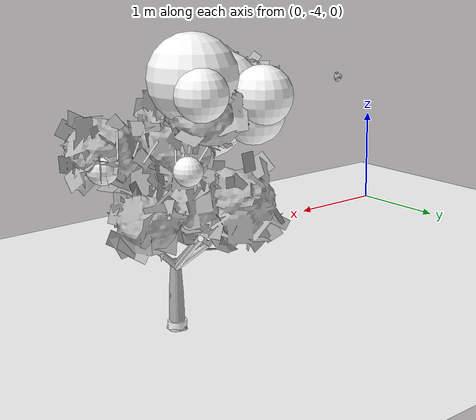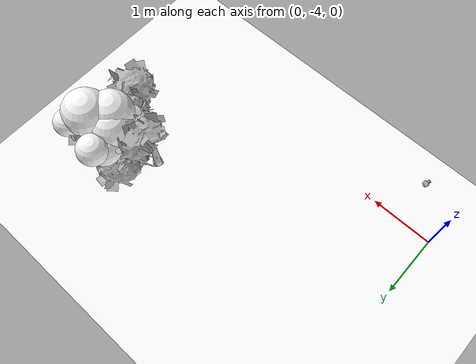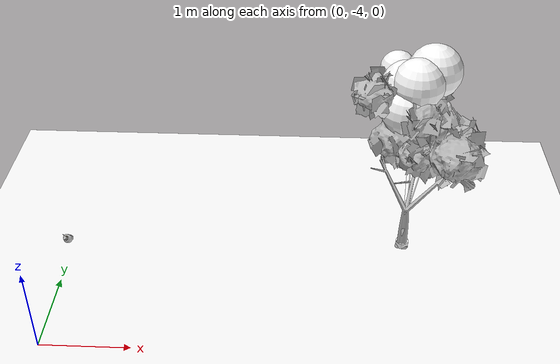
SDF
<sdf version="1.11">
 <world name="peach_orchard">
  <model name="ground">
   <static>true</static>
   <link name="link">
    <visual name="soil">
     <geometry><plane><normal>0 0 1</normal><size>32 22</size></plane></geometry>
     <material>
      <ambient>1 1 1 1</ambient>
      <diffuse>1 1 1 1</diffuse>
      <specular>0.1 0.1 0.1 1</specular>
      <pbr>
       <metal>
        <albedo_map>textures/soil_albedo.png</albedo_map>
        <normal_map type="tangent">textures/soil_normal.png</normal_map>
        <roughness>0.95</roughness>
        <metalness>0</metalness>
       </metal>
      </pbr>
     </material>
    </visual>
    <collision name="c_soil">
     <geometry><plane><normal>0 0 1</normal><size>32 22</size></plane></geometry>
    </collision>
   </link>
  </model>
  <model name="tree_r3_t2">
   <pose>4 -2.2 0 0 0 0</pose>
   <static>true</static>
   <link name="link">
    <visual name="tree_mesh">
     <pose>0 0 0 0 0 -0.284342</pose>
     <geometry>
      <mesh><uri>model://peach_sim/meshes/peach_tree_a.glb</uri><scale>0.98343 0.98343 0.98343</scale></mesh>
     </geometry>
    </visual>
    <visual name="trunk_0">
     <pose>0 0 0.149055 0 0 0</pose>
     <geometry><cylinder><radius>0.0524701</radius><length>0.298111</length></cylinder></geometry>
     <material>
      <ambient>1 1 1 1</ambient>
      <diffuse>1 1 1 1</diffuse>
      <specular>0.1 0.1 0.1 1</specular>
      <pbr>
       <metal>
        <albedo_map>textures/bark_albedo.png</albedo_map>
        <normal_map type="tangent">textures/bark_normal.png</normal_map>
        <roughness>0.9</roughness>
        <metalness>0</metalness>
       </metal>
      </pbr>
     </material>
    </visual>
    <collision name="c_trunk_0">
     <pose>0 0 0.149055 0 0 0</pose>
     <geometry><cylinder><radius>0.0524701</radius><length>0.298111</length></cylinder></geometry>
    </collision>
    <visual name="trunk_1">
     <pose>0 0 0.420065 0 0 0</pose>
     <geometry><cylinder><radius>0.0377785</radius><length>0.243909</length></cylinder></geometry>
     <material>
      <ambient>1 1 1 1</ambient>
      <diffuse>1 1 1 1</diffuse>
      <specular>0.1 0.1 0.1 1</specular>
      <pbr>
       <metal>
        <albedo_map>textures/bark_albedo.png</albedo_map>
        <normal_map type="tangent">textures/bark_normal.png</normal_map>
        <roughness>0.9</roughness>
        <metalness>0</metalness>
       </metal>
      </pbr>
     </material>
    </visual>
    <collision name="c_trunk_1">
     <pose>0 0 0.420065 0 0 0</pose>
     <geometry><cylinder><radius>0.0377785</radius><length>0.243909</length></cylinder></geometry>
    </collision>
    <visual name="root_flare">
     <pose>0 0 0.035 0 0 0</pose>
     <geometry><cylinder><radius>0.0760816</radius><length>0.07</length></cylinder></geometry>
     <material>
      <ambient>1 1 1 1</ambient>
      <diffuse>1 1 1 1</diffuse>
      <specular>0.1 0.1 0.1 1</specular>
      <pbr>
       <metal>
        <albedo_map>textures/bark_albedo.png</albedo_map>
        <normal_map type="tangent">textures/bark_normal.png</normal_map>
        <roughness>0.95</roughness>
        <metalness>0</metalness>
       </metal>
      </pbr>
     </material>
    </visual>
    <visual name="scaffold_0">
     <pose>0.0411965 0.375163 0.747923 0 0.987111 1.46142</pose>
     <geometry><cylinder><radius>0.022</radius><length>0.904605</length></cylinder></geometry>
     <material>
      <ambient>1 1 1 1</ambient>
      <diffuse>1 1 1 1</diffuse>
      <specular>0.1 0.1 0.1 1</specular>
      <pbr>
       <metal>
        <albedo_map>textures/bark_albedo.png</albedo_map>
        <normal_map type="tangent">textures/bark_normal.png</normal_map>
        <roughness>0.9</roughness>
        <metalness>0</metalness>
       </metal>
      </pbr>
     </material>
    </visual>
    <collision name="c_scaffold_0">
     <pose>0.0411965 0.375163 0.747923 0 0.987111 1.46142</pose>
     <geometry><cylinder><radius>0.022</radius><length>0.904605</length></cylinder></geometry>
    </collision>
    <visual name="branchlet_0_0">
     <pose>0.118654 0.590028 0.889309 0 1.08826 0.940139</pose>
     <geometry><cylinder><radius>0.012</radius><length>0.242743</length></cylinder></geometry>
     <material>
      <ambient>1 1 1 1</ambient>
      <diffuse>1 1 1 1</diffuse>
      <specular>0.1 0.1 0.1 1</specular>
      <pbr>
       <metal>
        <albedo_map>textures/bark_albedo.png</albedo_map>
        <normal_map type="tangent">textures/bark_normal.png</normal_map>
        <roughness>0.9</roughness>
        <metalness>0</metalness>
       </metal>
      </pbr>
     </material>
    </visual>
    <visual name="branchlet_0_1">
     <pose>-0.000234433 0.569813 0.970819 0 0.814393 -2.6648</pose>
     <geometry><cylinder><radius>0.012</radius><length>0.206075</length></cylinder></geometry>
     <material>
      <ambient>1 1 1 1</ambient>
      <diffuse>1 1 1 1</diffuse>
      <specular>0.1 0.1 0.1 1</specular>
      <pbr>
       <metal>
        <albedo_map>textures/bark_albedo.png</albedo_map>
        <normal_map type="tangent">textures/bark_normal.png</normal_map>
        <roughness>0.9</roughness>
        <metalness>0</metalness>
       </metal>
      </pbr>
     </material>
    </visual>
    <visual name="scaffold_1">
     <pose>0.146731 0.368526 0.74023 0 1.02378 1.19188</pose>
     <geometry><cylinder><radius>0.022</radius><length>0.928867</length></cylinder></geometry>
     <material>
      <ambient>1 1 1 1</ambient>
      <diffuse>1 1 1 1</diffuse>
      <specular>0.1 0.1 0.1 1</specular>
      <pbr>
       <metal>
        <albedo_map>textures/bark_albedo.png</albedo_map>
        <normal_map type="tangent">textures/bark_normal.png</normal_map>
        <roughness>0.9</roughness>
        <metalness>0</metalness>
       </metal>
      </pbr>
     </material>
    </visual>
    <collision name="c_scaffold_1">
     <pose>0.146731 0.368526 0.74023 0 1.02378 1.19188</pose>
     <geometry><cylinder><radius>0.022</radius><length>0.928867</length></cylinder></geometry>
    </collision>
    <visual name="branchlet_1_0">
     <pose>0.121043 0.609035 0.979841 0 1.21114 -2.84571</pose>
     <geometry><cylinder><radius>0.012</radius><length>0.308766</length></cylinder></geometry>
     <material>
      <ambient>1 1 1 1</ambient>
      <diffuse>1 1 1 1</diffuse>
      <specular>0.1 0.1 0.1 1</specular>
      <pbr>
       <metal>
        <albedo_map>textures/bark_albedo.png</albedo_map>
        <normal_map type="tangent">textures/bark_normal.png</normal_map>
        <roughness>0.9</roughness>
        <metalness>0</metalness>
       </metal>
      </pbr>
     </material>
    </visual>
    <visual name="branchlet_1_1">
     <pose>0.349899 0.606536 1.02709 0 0.693996 -0.027296</pose>
     <geometry><cylinder><radius>0.012</radius><length>0.335441</length></cylinder></geometry>
     <material>
      <ambient>1 1 1 1</ambient>
      <diffuse>1 1 1 1</diffuse>
      <specular>0.1 0.1 0.1 1</specular>
      <pbr>
       <metal>
        <albedo_map>textures/bark_albedo.png</albedo_map>
        <normal_map type="tangent">textures/bark_normal.png</normal_map>
        <roughness>0.9</roughness>
        <metalness>0</metalness>
       </metal>
      </pbr>
     </material>
    </visual>
    <visual name="canopy_0">
     <pose>-0.148236 0.884861 1.95027 0 0 0</pose>
     <geometry><sphere><radius>0.212084</radius></sphere></geometry>
     <material>
      <ambient>1 1 1 1</ambient>
      <diffuse>1 1 1 1</diffuse>
      <specular>0.1 0.1 0.1 1</specular>
      <pbr>
       <metal>
        <albedo_map>textures/leaf_albedo.png</albedo_map>
        <normal_map type="tangent">textures/leaf_normal.png</normal_map>
        <roughness>0.85</roughness>
        <metalness>0</metalness>
       </metal>
      </pbr>
     </material>
    </visual>
    <collision name="c_canopy_0">
     <pose>-0.148236 0.884861 1.95027 0 0 0</pose>
     <geometry><sphere><radius>0.212084</radius></sphere></geometry>
    </collision>
    <visual name="canopy_1">
     <pose>-0.0770486 0.505133 1.93713 0 0 0</pose>
     <geometry><sphere><radius>0.29601</radius></sphere></geometry>
     <material>
      <ambient>1 1 1 1</ambient>
      <diffuse>1 1 1 1</diffuse>
      <specular>0.1 0.1 0.1 1</specular>
      <pbr>
       <metal>
        <albedo_map>textures/leaf_albedo.png</albedo_map>
        <normal_map type="tangent">textures/leaf_normal.png</normal_map>
        <roughness>0.85</roughness>
        <metalness>0</metalness>
       </metal>
      </pbr>
     </material>
    </visual>
    <collision name="c_canopy_1">
     <pose>-0.0770486 0.505133 1.93713 0 0 0</pose>
     <geometry><sphere><radius>0.29601</radius></sphere></geometry>
    </collision>
    <visual name="canopy_2">
     <pose>-0.16886 0.755609 1.81423 0 0 0</pose>
     <geometry><sphere><radius>0.229153</radius></sphere></geometry>
     <material>
      <ambient>1 1 1 1</ambient>
      <diffuse>1 1 1 1</diffuse>
      <specular>0.1 0.1 0.1 1</specular>
      <pbr>
       <metal>
        <albedo_map>textures/leaf_albedo.png</albedo_map>
        <normal_map type="tangent">textures/leaf_normal.png</normal_map>
        <roughness>0.85</roughness>
        <metalness>0</metalness>
       </metal>
      </pbr>
     </material>
    </visual>
    <collision name="c_canopy_2">
     <pose>-0.16886 0.755609 1.81423 0 0 0</pose>
     <geometry><sphere><radius>0.229153</radius></sphere></geometry>
    </collision>
    <visual name="canopy_3">
     <pose>0.0366819 0.387905 2.02014 0 0 0</pose>
     <geometry><sphere><radius>0.302865</radius></sphere></geometry>
     <material>
      <ambient>1 1 1 1</ambient>
      <diffuse>1 1 1 1</diffuse>
      <specular>0.1 0.1 0.1 1</specular>
      <pbr>
       <metal>
        <albedo_map>textures/leaf_albedo.png</albedo_map>
        <normal_map type="tangent">textures/leaf_normal.png</normal_map>
        <roughness>0.85</roughness>
        <metalness>0</metalness>
       </metal>
      </pbr>
     </material>
    </visual>
    <visual name="canopy_4">
     <pose>-0.0127409 0.589853 1.78665 0 0 0</pose>
     <geometry><sphere><radius>0.211436</radius></sphere></geometry>
     <material>
      <ambient>1 1 1 1</ambient>
      <diffuse>1 1 1 1</diffuse>
      <specular>0.1 0.1 0.1 1</specular>
      <pbr>
       <metal>
        <albedo_map>textures/leaf_albedo.png</albedo_map>
        <normal_map type="tangent">textures/leaf_normal.png</normal_map>
        <roughness>0.85</roughness>
        <metalness>0</metalness>
       </metal>
      </pbr>
     </material>
    </visual>
    <visual name="canopy_5">
     <pose>0.343844 0.845476 2.0007 0 0 0</pose>
     <geometry><sphere><radius>0.185288</radius></sphere></geometry>
     <material>
      <ambient>1 1 1 1</ambient>
      <diffuse>1 1 1 1</diffuse>
      <specular>0.1 0.1 0.1 1</specular>
      <pbr>
       <metal>
        <albedo_map>textures/leaf_albedo.png</albedo_map>
        <normal_map type="tangent">textures/leaf_normal.png</normal_map>
        <roughness>0.85</roughness>
        <metalness>0</metalness>
       </metal>
      </pbr>
     </material>
    </visual>
    <visual name="canopy_6">
     <pose>0.237812 0.608523 2.07257 0 0 0</pose>
     <geometry><sphere><radius>0.317187</radius></sphere></geometry>
     <material>
      <ambient>1 1 1 1</ambient>
      <diffuse>1 1 1 1</diffuse>
      <specular>0.1 0.1 0.1 1</specular>
      <pbr>
       <metal>
        <albedo_map>textures/leaf_albedo.png</albedo_map>
        <normal_map type="tangent">textures/leaf_normal.png</normal_map>
        <roughness>0.85</roughness>
        <metalness>0</metalness>
       </metal>
      </pbr>
     </material>
    </visual>
    <visual name="canopy_7">
     <pose>-0.0673886 0.31925 1.73299 0 0 0</pose>
     <geometry><sphere><radius>0.304938</radius></sphere></geometry>
     <material>
      <ambient>1 1 1 1</ambient>
      <diffuse>1 1 1 1</diffuse>
      <specular>0.1 0.1 0.1 1</specular>
      <pbr>
       <metal>
        <albedo_map>textures/leaf_albedo.png</albedo_map>
        <normal_map type="tangent">textures/leaf_normal.png</normal_map>
        <roughness>0.85</roughness>
        <metalness>0</metalness>
       </metal>
      </pbr>
     </material>
    </visual>
    <visual name="canopy_8">
     <pose>0.172235 0.466377 1.85532 0 0 0</pose>
     <geometry><sphere><radius>0.192846</radius></sphere></geometry>
     <material>
      <ambient>1 1 1 1</ambient>
      <diffuse>1 1 1 1</diffuse>
      <specular>0.1 0.1 0.1 1</specular>
      <pbr>
       <metal>
        <albedo_map>textures/leaf_albedo.png</albedo_map>
        <normal_map type="tangent">textures/leaf_normal.png</normal_map>
        <roughness>0.85</roughness>
        <metalness>0</metalness>
       </metal>
      </pbr>
     </material>
    </visual>
    <visual name="foliage_0">
     <pose>0.549716 -0.101148 1.36482 0 0 0</pose>
     <geometry><sphere><radius>0.12236</radius></sphere></geometry>
     <material>
      <ambient>1 1 1 1</ambient>
      <diffuse>1 1 1 1</diffuse>
      <specular>0.1 0.1 0.1 1</specular>
      <pbr>
       <metal>
        <albedo_map>textures/leaf_albedo.png</albedo_map>
        <normal_map type="tangent">textures/leaf_normal.png</normal_map>
        <roughness>0.85</roughness>
        <metalness>0</metalness>
       </metal>
      </pbr>
     </material>
    </visual>
    <visual name="foliage_4">
     <pose>0.318334 -0.302657 1.39149 0 0 0</pose>
     <geometry><sphere><radius>0.106235</radius></sphere></geometry>
     <material>
      <ambient>1 1 1 1</ambient>
      <diffuse>1 1 1 1</diffuse>
      <specular>0.1 0.1 0.1 1</specular>
      <pbr>
       <metal>
        <albedo_map>textures/leaf_albedo.png</albedo_map>
        <normal_map type="tangent">textures/leaf_normal.png</normal_map>
        <roughness>0.85</roughness>
        <metalness>0</metalness>
       </metal>
      </pbr>
     </material>
    </visual>
    <visual name="foliage_8">
     <pose>0.416324 0.78155 1.48591 0 0 0</pose>
     <geometry><sphere><radius>0.10224</radius></sphere></geometry>
     <material>
      <ambient>1 1 1 1</ambient>
      <diffuse>1 1 1 1</diffuse>
      <specular>0.1 0.1 0.1 1</specular>
      <pbr>
       <metal>
        <albedo_map>textures/leaf_albedo.png</albedo_map>
        <normal_map type="tangent">textures/leaf_normal.png</normal_map>
        <roughness>0.85</roughness>
        <metalness>0</metalness>
       </metal>
      </pbr>
     </material>
    </visual>
    <visual name="twig_0">
     <pose>0.517685 -0.0490663 1.55562 0 0.27215 -2.78168</pose>
     <geometry><cylinder><radius>0.007</radius><length>0.15534</length></cylinder></geometry>
     <material>
      <ambient>1 1 1 1</ambient>
      <diffuse>1 1 1 1</diffuse>
      <specular>0.1 0.1 0.1 1</specular>
      <pbr>
       <metal>
        <albedo_map>textures/bark_albedo.png</albedo_map>
        <normal_map type="tangent">textures/bark_normal.png</normal_map>
        <roughness>0.9</roughness>
        <metalness>0</metalness>
       </metal>
      </pbr>
     </material>
    </visual>
    <visual name="twig_1">
     <pose>0.530464 0.0867635 1.56481 0 0.37545 -2.18852</pose>
     <geometry><cylinder><radius>0.007</radius><length>0.205093</length></cylinder></geometry>
     <material>
      <ambient>1 1 1 1</ambient>
      <diffuse>1 1 1 1</diffuse>
      <specular>0.1 0.1 0.1 1</specular>
      <pbr>
       <metal>
        <albedo_map>textures/bark_albedo.png</albedo_map>
        <normal_map type="tangent">textures/bark_normal.png</normal_map>
        <roughness>0.9</roughness>
        <metalness>0</metalness>
       </metal>
      </pbr>
     </material>
    </visual>
    <visual name="twig_2">
     <pose>0.529143 0.330754 1.57754 0 0.387682 2.83132</pose>
     <geometry><cylinder><radius>0.007</radius><length>0.115877</length></cylinder></geometry>
     <material>
      <ambient>1 1 1 1</ambient>
      <diffuse>1 1 1 1</diffuse>
      <specular>0.1 0.1 0.1 1</specular>
      <pbr>
       <metal>
        <albedo_map>textures/bark_albedo.png</albedo_map>
        <normal_map type="tangent">textures/bark_normal.png</normal_map>
        <roughness>0.9</roughness>
        <metalness>0</metalness>
       </metal>
      </pbr>
     </material>
    </visual>
    <visual name="twig_3">
     <pose>0.5215 0.499168 1.58498 0 0.630782 2.79787</pose>
     <geometry><cylinder><radius>0.007</radius><length>0.179735</length></cylinder></geometry>
     <material>
      <ambient>1 1 1 1</ambient>
      <diffuse>1 1 1 1</diffuse>
      <specular>0.1 0.1 0.1 1</specular>
      <pbr>
       <metal>
        <albedo_map>textures/bark_albedo.png</albedo_map>
        <normal_map type="tangent">textures/bark_normal.png</normal_map>
        <roughness>0.9</roughness>
        <metalness>0</metalness>
       </metal>
      </pbr>
     </material>
    </visual>
    <visual name="twig_4">
     <pose>0.344665 -0.27646 1.47562 0 0.712315 3.01959</pose>
     <geometry><cylinder><radius>0.007</radius><length>0.134931</length></cylinder></geometry>
     <material>
      <ambient>1 1 1 1</ambient>
      <diffuse>1 1 1 1</diffuse>
      <specular>0.1 0.1 0.1 1</specular>
      <pbr>
       <metal>
        <albedo_map>textures/bark_albedo.png</albedo_map>
        <normal_map type="tangent">textures/bark_normal.png</normal_map>
        <roughness>0.9</roughness>
        <metalness>0</metalness>
       </metal>
      </pbr>
     </material>
    </visual>
    <visual name="twig_5">
     <pose>0.385029 -0.341075 1.44761 0 0.403492 -2.8693</pose>
     <geometry><cylinder><radius>0.007</radius><length>0.119843</length></cylinder></geometry>
     <material>
      <ambient>1 1 1 1</ambient>
      <diffuse>1 1 1 1</diffuse>
      <specular>0.1 0.1 0.1 1</specular>
      <pbr>
       <metal>
        <albedo_map>textures/bark_albedo.png</albedo_map>
        <normal_map type="tangent">textures/bark_normal.png</normal_map>
        <roughness>0.9</roughness>
        <metalness>0</metalness>
       </metal>
      </pbr>
     </material>
    </visual>
    <visual name="twig_6">
     <pose>0.45234 -0.419615 1.47886 0 0.200255 -2.25475</pose>
     <geometry><cylinder><radius>0.007</radius><length>0.148462</length></cylinder></geometry>
     <material>
      <ambient>1 1 1 1</ambient>
      <diffuse>1 1 1 1</diffuse>
      <specular>0.1 0.1 0.1 1</specular>
      <pbr>
       <metal>
        <albedo_map>textures/bark_albedo.png</albedo_map>
        <normal_map type="tangent">textures/bark_normal.png</normal_map>
        <roughness>0.9</roughness>
        <metalness>0</metalness>
       </metal>
      </pbr>
     </material>
    </visual>
    <visual name="twig_7">
     <pose>0.36807 0.572729 1.55795 0 0.216265 -2.25095</pose>
     <geometry><cylinder><radius>0.007</radius><length>0.198693</length></cylinder></geometry>
     <material>
      <ambient>1 1 1 1</ambient>
      <diffuse>1 1 1 1</diffuse>
      <specular>0.1 0.1 0.1 1</specular>
      <pbr>
       <metal>
        <albedo_map>textures/bark_albedo.png</albedo_map>
        <normal_map type="tangent">textures/bark_normal.png</normal_map>
        <roughness>0.9</roughness>
        <metalness>0</metalness>
       </metal>
      </pbr>
     </material>
    </visual>
    <visual name="twig_8">
     <pose>0.347431 0.653865 1.60303 0 0.623324 -2.70122</pose>
     <geometry><cylinder><radius>0.007</radius><length>0.185104</length></cylinder></geometry>
     <material>
      <ambient>1 1 1 1</ambient>
      <diffuse>1 1 1 1</diffuse>
      <specular>0.1 0.1 0.1 1</specular>
      <pbr>
       <metal>
        <albedo_map>textures/bark_albedo.png</albedo_map>
        <normal_map type="tangent">textures/bark_normal.png</normal_map>
        <roughness>0.9</roughness>
        <metalness>0</metalness>
       </metal>
      </pbr>
     </material>
    </visual>
    <visual name="twig_9">
     <pose>0.325891 0.820023 1.58449 0 0.700806 3.10078</pose>
     <geometry><cylinder><radius>0.007</radius><length>0.15519</length></cylinder></geometry>
     <material>
      <ambient>1 1 1 1</ambient>
      <diffuse>1 1 1 1</diffuse>
      <specular>0.1 0.1 0.1 1</specular>
      <pbr>
       <metal>
        <albedo_map>textures/bark_albedo.png</albedo_map>
        <normal_map type="tangent">textures/bark_normal.png</normal_map>
        <roughness>0.9</roughness>
        <metalness>0</metalness>
       </metal>
      </pbr>
     </material>
    </visual>
   </link>
  </model>
  <model name="peach_tree_r2_t1_03">
   <pose>0.55 -3.93542 1.45 0 0.796412 -1.94435</pose>
   <static>true</static>
   <link name="bag">
    <visual name="bag_mesh">
     <pose>0 0 0.04819 0 0 -0</pose>
     <geometry>
      <mesh><uri>model://peach_sim/meshes/bagged_peach.glb</uri><scale>1.02066 1.2395 1.09523</scale></mesh>
     </geometry>
    </visual>
    <visual name="body">
     <pose>0 0 0.03019 0 0 0</pose>
     <geometry><ellipsoid><radii>0.0382746 0.0322271 0.0326052</radii></ellipsoid></geometry>
     <material>
      <ambient>1 1 1 1</ambient>
      <diffuse>1 1 1 1</diffuse>
      <specular>0.1 0.1 0.1 1</specular>
      <pbr>
       <metal>
        <albedo_map>textures/paper_bag_albedo.png</albedo_map>
        <normal_map type="tangent">textures/paper_bag_normal.png</normal_map>
        <roughness>0.72</roughness>
        <metalness>0</metalness>
       </metal>
      </pbr>
     </material>
    </visual>
    <visual name="bottom_fold">
     <pose>0 0 0.012 0 0 0.35</pose>
     <geometry><box><size>0.0593256 0.0370611 0.022</size></box></geometry>
     <material>
      <ambient>1 1 1 1</ambient>
      <diffuse>1 1 1 1</diffuse>
      <specular>0.1 0.1 0.1 1</specular>
      <pbr>
       <metal>
        <albedo_map>textures/paper_bag_albedo.png</albedo_map>
        <normal_map type="tangent">textures/paper_bag_normal.png</normal_map>
        <roughness>0.8</roughness>
        <metalness>0</metalness>
       </metal>
      </pbr>
     </material>
    </visual>
    <visual name="fruit">
     <pose>0 0 0.0201179 0 0 0</pose>
     <geometry><sphere><radius>0.0271626</radius></sphere></geometry>
     <material>
      <ambient>1 1 1 1</ambient>
      <diffuse>1 1 1 1</diffuse>
      <specular>0.1 0.1 0.1 1</specular>
      <pbr>
       <metal>
        <albedo_map>textures/fruit_skin_albedo.png</albedo_map>
        <normal_map type="tangent">textures/fruit_skin_normal.png</normal_map>
        <roughness>0.55</roughness>
        <metalness>0</metalness>
       </metal>
      </pbr>
     </material>
    </visual>
    <visual name="neck">
     <pose>0 0 0.0693801 0 0 0</pose>
     <geometry><cylinder><radius>0.013</radius><length>0.018</length></cylinder></geometry>
     <material>
      <ambient>1 1 1 1</ambient>
      <diffuse>1 1 1 1</diffuse>
      <specular>0.1 0.1 0.1 1</specular>
      <pbr>
       <metal>
        <albedo_map>textures/paper_bag_albedo.png</albedo_map>
        <normal_map type="tangent">textures/paper_bag_normal.png</normal_map>
        <roughness>0.75</roughness>
        <metalness>0</metalness>
       </metal>
      </pbr>
     </material>
    </visual>
    <visual name="gather">
     <pose>0 0 0.0503801 0 0 0</pose>
     <geometry><cylinder><radius>0.019</radius><length>0.02</length></cylinder></geometry>
     <material>
      <ambient>1 1 1 1</ambient>
      <diffuse>1 1 1 1</diffuse>
      <specular>0.1 0.1 0.1 1</specular>
      <pbr>
       <metal>
        <albedo_map>textures/paper_bag_albedo.png</albedo_map>
        <normal_map type="tangent">textures/paper_bag_normal.png</normal_map>
        <roughness>0.8</roughness>
        <metalness>0</metalness>
       </metal>
      </pbr>
     </material>
    </visual>
    <visual name="inner_paper">
     <pose>0 0 0.0743801 0 0 0</pose>
     <geometry><cylinder><radius>0.01</radius><length>0.008</length></cylinder></geometry>
     <material>
      <ambient>0.180392 0.14902 0.133333 1</ambient>
      <diffuse>0.180392 0.14902 0.133333 1</diffuse>
      <specular>0.1 0.1 0.1 1</specular>
     </material>
    </visual>
    <visual name="wire_0">
     <pose>0 0 0.0643801 0 0 0</pose>
     <geometry><cylinder><radius>0.0205</radius><length>0.0035</length></cylinder></geometry>
     <material>
      <ambient>0.25 0.25 0.25 1</ambient>
      <diffuse>0.25 0.25 0.25 1</diffuse>
      <specular>0.1 0.1 0.1 1</specular>
     </material>
    </visual>
    <visual name="wire_1">
     <pose>0 0 0.0713801 0 0 0</pose>
     <geometry><cylinder><radius>0.0205</radius><length>0.0035</length></cylinder></geometry>
     <material>
      <ambient>0.25 0.25 0.25 1</ambient>
      <diffuse>0.25 0.25 0.25 1</diffuse>
      <specular>0.1 0.1 0.1 1</specular>
     </material>
    </visual>
    <visual name="wire_tail">
     <pose>0.01 0 0.0723801 0 0.521618 0</pose>
     <geometry><cylinder><radius>0.0012</radius><length>0.026</length></cylinder></geometry>
     <material>
      <ambient>0.25 0.25 0.25 1</ambient>
      <diffuse>0.25 0.25 0.25 1</diffuse>
      <specular>0.1 0.1 0.1 1</specular>
     </material>
    </visual>
    <collision name="c_body">
     <pose>0 0 0.03019 0 0 0</pose>
     <geometry><cylinder><radius>0.0382746</radius><length>0.0603801</length></cylinder></geometry>
    </collision>
   </link>
  </model>
 </world>
</sdf>
